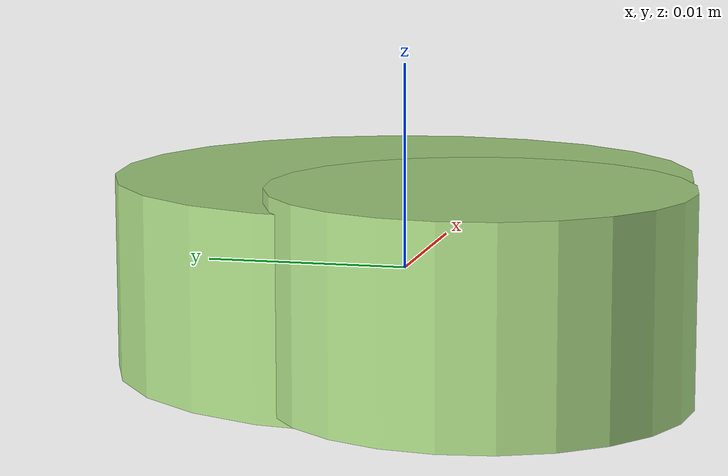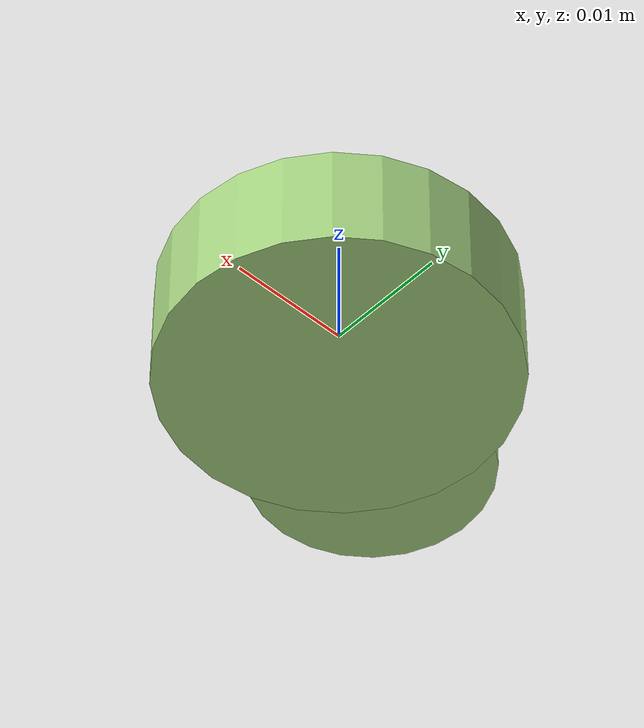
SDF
<?xml version="1.0" ?>
<!-- |    This document was autogenerated by xmacro from data/veggie_template/veggie_base.sdf.xacro  | -->
<!-- |    EDITING THIS FILE BY HAND IS NOT RECOMMENDED                                               | -->
<sdf version="1.8">
	<!-- Parameters -->
	<!-- Base -->
	<!-- Joint 0 -->
	<!-- Link 1 -->
	<!-- Joint 1 -->
	<!-- Link 2 -->
	<!-- Primitives -->
	<!-- All dimensions are half -->
	<!-- Object -->
	<model name="veggie">
		<!-- link0 -->
		<link name="link0">
			<inertial>
				<mass>0.005806341512969817</mass>
				<inertia>
					<ixx>3.280158906640165e-07</ixx>
					<ixy>0</ixy>
					<ixz>0</ixz>
					<iyy>3.280158906640165e-07</iyy>
					<iyz>0</iyz>
					<izz>5.703983513062628e-07</izz>
				</inertia>
			</inertial>
			<visual name="link0_visual">
				<pose>0 0 0 0 0 0</pose>
				<geometry>
					<cylinder>
						<radius>0.014016927933932286</radius>
						<length>0.009406888731010074</length>
					</cylinder>
				</geometry>
				<material>
					<ambient>0.659 0.839 0.514 1</ambient>
					<diffuse>0.659 0.839 0.514 1</diffuse>
					<specular>0 0 0 0</specular>
					<emissive>0 0 0 1</emissive>
				</material>
			</visual>
			<collision name="link0_collision">
				<pose>0 0 0 0 0 0 </pose>
				<geometry>
					<cylinder>
						<radius>0.014016927933932286</radius>
						<length>0.009406888731010074</length>
					</cylinder>
				</geometry>
			</collision>
		</link>
		<!-- link1 -->
		<joint name="joint0" type="fixed">
			<pose relative_to="link0">-0.00829973172202163 -0.005364228127549183 0.0005411775031092851 0.0 0.0 0.0</pose>
			<parent>link0</parent>
			<child>link1</child>
		</joint>
		<link name="link1">
			<pose relative_to="joint0">0 0 0 0 0 0</pose>
			<inertial>
				<mass>0.0028644370657898415</mass>
				<inertia>
					<ixx>8.97567267271109e-08</ixx>
					<ixy>0</ixy>
					<ixz>0</ixz>
					<iyy>8.97567267271109e-08</iyy>
					<iyz>0</iyz>
					<izz>1.3453239878221538e-07</izz>
				</inertia>
			</inertial>
			<visual name="link1_visual">
				<pose>0 0 0 0 0 0</pose>
				<geometry>
					<cylinder>
						<radius>0.009691897185867916</radius>
						<length>0.009706681952325128</length>
					</cylinder>
				</geometry>
				<material>
					<ambient>0.659 0.839 0.514 1</ambient>
					<diffuse>0.659 0.839 0.514 1</diffuse>
					<specular>0 0 0 0</specular>
					<emissive>0 0 0 1</emissive>
				</material>
			</visual>
			<collision name="link1_collision">
				<pose>0 0 0 0 0 0 </pose>
				<geometry>
					<cylinder>
						<radius>0.009691897185867916</radius>
						<length>0.009706681952325128</length>
					</cylinder>
				</geometry>
			</collision>
		</link>
		<!-- link2 -->
	</model>
</sdf>
